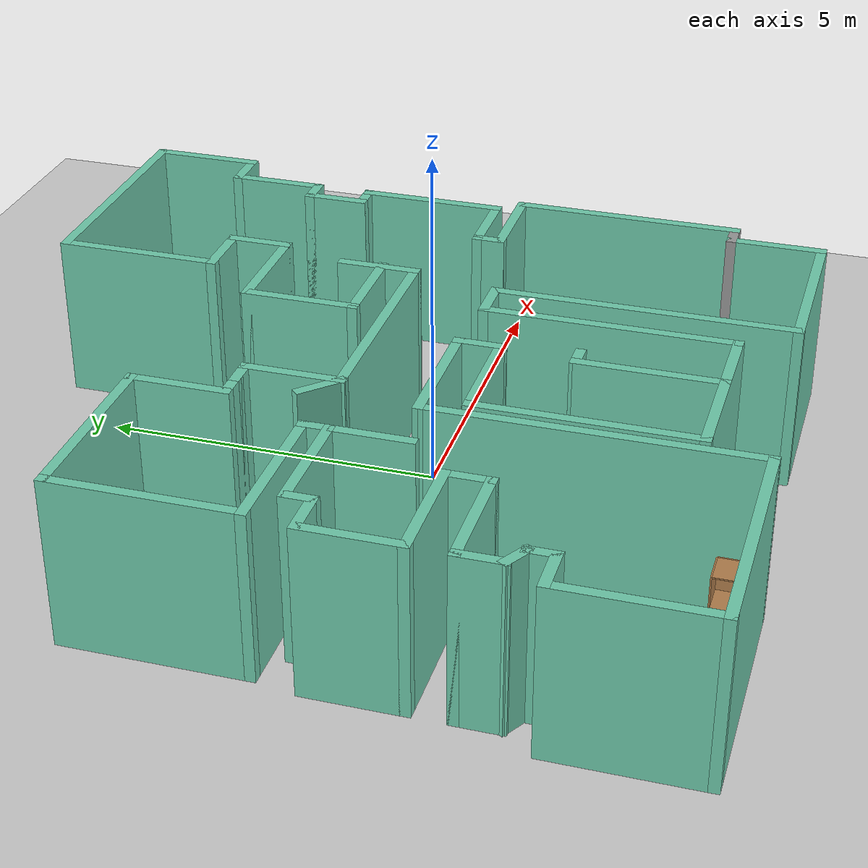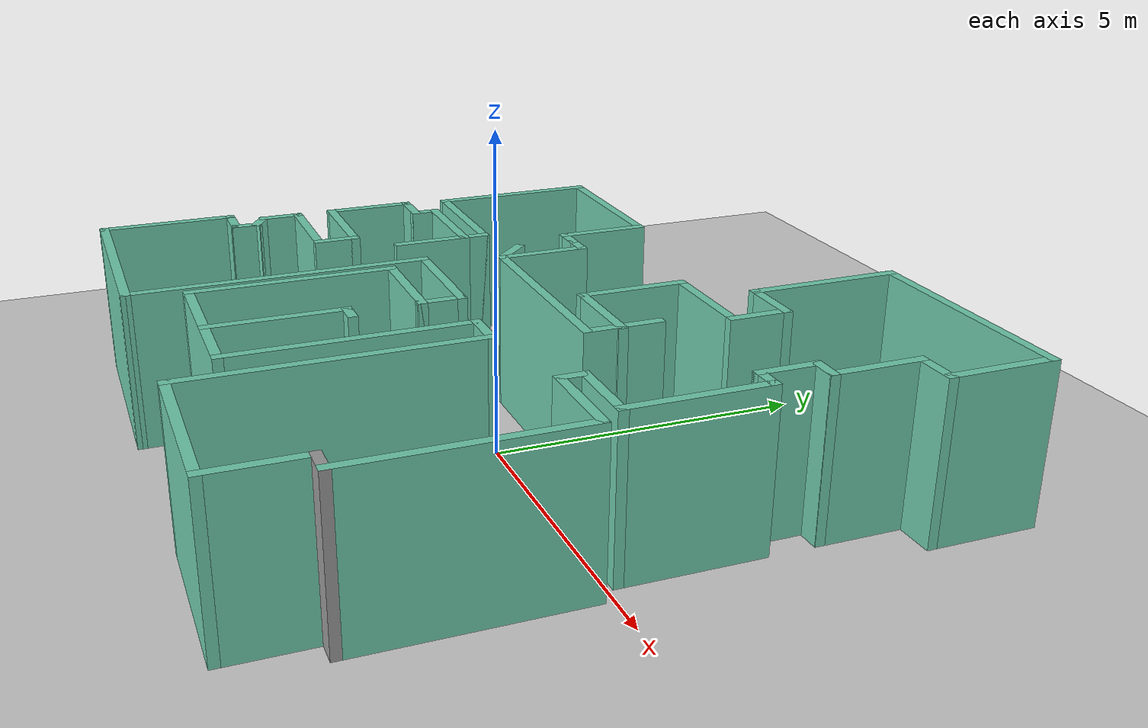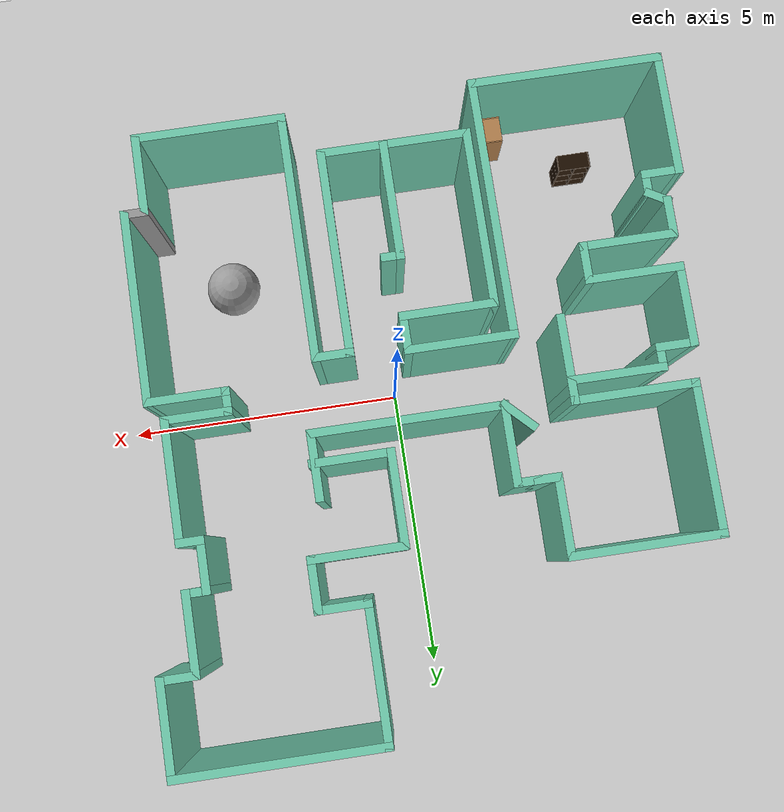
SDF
<sdf version="1.6">
 <world name="default">
  <model name="ground_plane">
   <static>1</static>
   <link name="link">
    <collision name="collision">
     <geometry><plane><normal>0 0 1</normal><size>100 100</size></plane></geometry>
     <surface><friction><ode><mu>100</mu><mu2>50</mu2></ode></friction></surface>
    </collision>
    <visual name="visual">
     <cast_shadows>0</cast_shadows>
     <geometry><plane><normal>0 0 1</normal><size>100 100</size></plane></geometry>
     <material>
      <script><uri>file://media/materials/scripts/gazebo.material</uri><name>Gazebo/Grey</name></script>
     </material>
    </visual>
   </link>
  </model>
  <model name="map_22">
   <pose>-0.422248 0.513262 0 0 -0 0</pose>
   <link name="Wall_0">
    <collision name="Wall_0_Collision">
     <geometry><box><size>3.5 0.15 2.5</size></box></geometry>
     <pose>0 0 1.25 0 -0 0</pose>
    </collision>
    <visual name="Wall_0_Visual">
     <pose>0 0 1.25 0 -0 0</pose>
     <geometry><box><size>3.5 0.15 2.5</size></box></geometry>
     <material>
      <script><uri>file://media/materials/scripts/gazebo.material</uri><name>Gazebo/Grey</name></script>
      <ambient>0.435294 0.796078 0.67451 1</ambient>
     </material>
     <meta><layer>0</layer></meta>
    </visual>
    <pose>-3.3677 -5.54294 0 0 -0 3.14159</pose>
   </link>
   <link name="Wall_1">
    <collision name="Wall_1_Collision">
     <geometry><box><size>2.25 0.15 2.5</size></box></geometry>
     <pose>0 0 1.25 0 -0 0</pose>
    </collision>
    <visual name="Wall_1_Visual">
     <pose>0 0 1.25 0 -0 0</pose>
     <geometry><box><size>2.25 0.15 2.5</size></box></geometry>
     <material>
      <script><uri>file://media/materials/scripts/gazebo.material</uri><name>Gazebo/Grey</name></script>
      <ambient>0.435294 0.796078 0.67451 1</ambient>
     </material>
     <meta><layer>0</layer></meta>
    </visual>
    <pose>-5.0427 -4.49294 0 0 -0 1.5708</pose>
   </link>
   <link name="Wall_10">
    <collision name="Wall_10_Collision">
     <geometry><box><size>0.75 0.15 2.5</size></box></geometry>
     <pose>0 0 1.25 0 -0 0</pose>
    </collision>
    <visual name="Wall_10_Visual">
     <pose>0 0 1.25 0 -0 0</pose>
     <geometry><box><size>0.75 0.15 2.5</size></box></geometry>
     <material>
      <script><uri>file://media/materials/scripts/gazebo.material</uri><name>Gazebo/Grey</name></script>
      <ambient>0.435294 0.796078 0.67451 1</ambient>
     </material>
     <meta><layer>0</layer></meta>
    </visual>
    <pose>-4.44581 -0.367941 0 0 -0 0</pose>
   </link>
   <link name="Wall_11">
    <collision name="Wall_11_Collision">
     <geometry><box><size>0.5 0.15 2.5</size></box></geometry>
     <pose>0 0 1.25 0 -0 0</pose>
    </collision>
    <visual name="Wall_11_Visual">
     <pose>0 0 1.25 0 -0 0</pose>
     <geometry><box><size>0.5 0.15 2.5</size></box></geometry>
     <material>
      <script><uri>file://media/materials/scripts/gazebo.material</uri><name>Gazebo/Grey</name></script>
      <ambient>0.435294 0.796078 0.67451 1</ambient>
     </material>
     <meta><layer>0</layer></meta>
    </visual>
    <pose>-4.14581 -0.192941 0 0 -0 1.5708</pose>
   </link>
   <link name="Wall_12">
    <collision name="Wall_12_Collision">
     <geometry><box><size>1.75 0.15 2.5</size></box></geometry>
     <pose>0 0 1.25 0 -0 0</pose>
    </collision>
    <visual name="Wall_12_Visual">
     <pose>0 0 1.25 0 -0 0</pose>
     <geometry><box><size>1.75 0.15 2.5</size></box></geometry>
     <material>
      <script><uri>file://media/materials/scripts/gazebo.material</uri><name>Gazebo/Grey</name></script>
      <ambient>0.435294 0.796078 0.67451 1</ambient>
     </material>
     <meta><layer>0</layer></meta>
    </visual>
    <pose>-3.34581 -0.017941 0 0 -0 0</pose>
   </link>
   <link name="Wall_13">
    <collision name="Wall_13_Collision">
     <geometry><box><size>1.25 0.15 2.5</size></box></geometry>
     <pose>0 0 1.25 0 -0 0</pose>
    </collision>
    <visual name="Wall_13_Visual">
     <pose>0 0 1.25 0 -0 0</pose>
     <geometry><box><size>1.25 0.15 2.5</size></box></geometry>
     <material>
      <script><uri>file://media/materials/scripts/gazebo.material</uri><name>Gazebo/Grey</name></script>
      <ambient>0.435294 0.796078 0.67451 1</ambient>
     </material>
     <meta><layer>0</layer></meta>
    </visual>
    <pose>-2.54581 -0.567941 0 0 -0 -1.5708</pose>
   </link>
   <link name="Wall_15">
    <collision name="Wall_15_Collision">
     <geometry><box><size>0.5 0.15 2.5</size></box></geometry>
     <pose>0 0 1.25 0 -0 0</pose>
    </collision>
    <visual name="Wall_15_Visual">
     <pose>0 0 1.25 0 -0 0</pose>
     <geometry><box><size>0.5 0.15 2.5</size></box></geometry>
     <material>
      <script><uri>file://media/materials/scripts/gazebo.material</uri><name>Gazebo/Grey</name></script>
      <ambient>0.435294 0.796078 0.67451 1</ambient>
     </material>
     <meta><layer>0</layer></meta>
    </visual>
    <pose>-2.54581 0.157059 0 0 -0 1.5708</pose>
   </link>
   <link name="Wall_16">
    <collision name="Wall_16_Collision">
     <geometry><box><size>2.25 0.15 2.5</size></box></geometry>
     <pose>0 0 1.25 0 -0 0</pose>
    </collision>
    <visual name="Wall_16_Visual">
     <pose>0 0 1.25 0 -0 0</pose>
     <geometry><box><size>2.25 0.15 2.5</size></box></geometry>
     <material>
      <script><uri>file://media/materials/scripts/gazebo.material</uri><name>Gazebo/Grey</name></script>
      <ambient>0.435294 0.796078 0.67451 1</ambient>
     </material>
     <meta><layer>0</layer></meta>
    </visual>
    <pose>-3.59581 0.332059 0 0 -0 3.14159</pose>
   </link>
   <link name="Wall_17">
    <collision name="Wall_17_Collision">
     <geometry><box><size>2.75 0.15 2.5</size></box></geometry>
     <pose>0 0 1.25 0 -0 0</pose>
    </collision>
    <visual name="Wall_17_Visual">
     <pose>0 0 1.25 0 -0 0</pose>
     <geometry><box><size>2.75 0.15 2.5</size></box></geometry>
     <material>
      <script><uri>file://media/materials/scripts/gazebo.material</uri><name>Gazebo/Grey</name></script>
      <ambient>0.435294 0.796078 0.67451 1</ambient>
     </material>
     <meta><layer>0</layer></meta>
    </visual>
    <pose>-4.64581 1.63206 0 0 -0 1.5708</pose>
   </link>
   <link name="Wall_18">
    <collision name="Wall_18_Collision">
     <geometry><box><size>2.75 0.15 2.5</size></box></geometry>
     <pose>0 0 1.25 0 -0 0</pose>
    </collision>
    <visual name="Wall_18_Visual">
     <pose>0 0 1.25 0 -0 0</pose>
     <geometry><box><size>2.75 0.15 2.5</size></box></geometry>
     <material>
      <script><uri>file://media/materials/scripts/gazebo.material</uri><name>Gazebo/Grey</name></script>
      <ambient>0.435294 0.796078 0.67451 1</ambient>
     </material>
     <meta><layer>0</layer></meta>
    </visual>
    <pose>-3.34581 2.93206 0 0 -0 0</pose>
   </link>
   <link name="Wall_19">
    <collision name="Wall_19_Collision">
     <geometry><box><size>1.5 0.15 2.5</size></box></geometry>
     <pose>0 0 1.25 0 -0 0</pose>
    </collision>
    <visual name="Wall_19_Visual">
     <pose>0 0 1.25 0 -0 0</pose>
     <geometry><box><size>1.5 0.15 2.5</size></box></geometry>
     <material>
      <script><uri>file://media/materials/scripts/gazebo.material</uri><name>Gazebo/Grey</name></script>
      <ambient>0.435294 0.796078 0.67451 1</ambient>
     </material>
     <meta><layer>0</layer></meta>
    </visual>
    <pose>-2.04581 2.25706 0 0 -0 -1.5708</pose>
   </link>
   <link name="Wall_2">
    <collision name="Wall_2_Collision">
     <geometry><box><size>0.75 0.15 2.5</size></box></geometry>
     <pose>0 0 1.25 0 -0 0</pose>
    </collision>
    <visual name="Wall_2_Visual">
     <pose>0 0 1.25 0 -0 0</pose>
     <geometry><box><size>0.75 0.15 2.5</size></box></geometry>
     <material>
      <script><uri>file://media/materials/scripts/gazebo.material</uri><name>Gazebo/Grey</name></script>
      <ambient>0.435294 0.796078 0.67451 1</ambient>
     </material>
     <meta><layer>0</layer></meta>
    </visual>
    <pose>-4.7427 -3.44294 0 0 -0 0</pose>
   </link>
   <link name="Wall_20">
    <collision name="Wall_20_Collision">
     <geometry><box><size>0.5 0.15 2.5</size></box></geometry>
     <pose>0 0 1.25 0 -0 0</pose>
    </collision>
    <visual name="Wall_20_Visual">
     <pose>0 0 1.25 0 -0 0</pose>
     <geometry><box><size>0.5 0.15 2.5</size></box></geometry>
     <material>
      <script><uri>file://media/materials/scripts/gazebo.material</uri><name>Gazebo/Grey</name></script>
      <ambient>0.435294 0.796078 0.67451 1</ambient>
     </material>
     <meta><layer>0</layer></meta>
    </visual>
    <pose>-1.87081 1.58206 0 0 -0 0</pose>
   </link>
   <link name="Wall_21">
    <collision name="Wall_21_Collision">
     <geometry><box><size>0.5 0.15 2.5</size></box></geometry>
     <pose>0 0 1.25 0 -0 0</pose>
    </collision>
    <visual name="Wall_21_Visual">
     <pose>0 0 1.25 0 -0 0</pose>
     <geometry><box><size>0.5 0.15 2.5</size></box></geometry>
     <material>
      <script><uri>file://media/materials/scripts/gazebo.material</uri><name>Gazebo/Grey</name></script>
      <ambient>0.435294 0.796078 0.67451 1</ambient>
     </material>
     <meta><layer>0</layer></meta>
    </visual>
    <pose>-1.52081 1.58206 0 0 -0 0</pose>
   </link>
   <link name="Wall_22">
    <collision name="Wall_22_Collision">
     <geometry><box><size>1.5 0.15 2.5</size></box></geometry>
     <pose>0 0 1.25 0 -0 0</pose>
    </collision>
    <visual name="Wall_22_Visual">
     <pose>0 0 1.25 0 -0 0</pose>
     <geometry><box><size>1.5 0.15 2.5</size></box></geometry>
     <material>
      <script><uri>file://media/materials/scripts/gazebo.material</uri><name>Gazebo/Grey</name></script>
      <ambient>0.435294 0.796078 0.67451 1</ambient>
     </material>
     <meta><layer>0</layer></meta>
    </visual>
    <pose>-1.34581 0.907059 0 0 -0 -1.5708</pose>
   </link>
   <link name="Wall_23">
    <collision name="Wall_23_Collision">
     <geometry><box><size>0.75 0.15 2.5</size></box></geometry>
     <pose>0 0 1.25 0 -0 0</pose>
    </collision>
    <visual name="Wall_23_Visual">
     <pose>0 0 1.25 0 -0 0</pose>
     <geometry><box><size>0.75 0.15 2.5</size></box></geometry>
     <material>
      <script><uri>file://media/materials/scripts/gazebo.material</uri><name>Gazebo/Grey</name></script>
      <ambient>0.435294 0.796078 0.67451 1</ambient>
     </material>
     <meta><layer>0</layer></meta>
    </visual>
    <pose>-1.55794 0.444191 0 0 -0 2.35619</pose>
   </link>
   <link name="Wall_25">
    <collision name="Wall_25_Collision">
     <geometry><box><size>3.5 0.15 2.5</size></box></geometry>
     <pose>0 0 1.25 0 -0 0</pose>
    </collision>
    <visual name="Wall_25_Visual">
     <pose>0 0 1.25 0 -0 0</pose>
     <geometry><box><size>3.5 0.15 2.5</size></box></geometry>
     <material>
      <script><uri>file://media/materials/scripts/gazebo.material</uri><name>Gazebo/Grey</name></script>
      <ambient>0.435294 0.796078 0.67451 1</ambient>
     </material>
     <meta><layer>0</layer></meta>
    </visual>
    <pose>0.329189 0.232059 0 0 -0 0</pose>
   </link>
   <link name="Wall_26">
    <collision name="Wall_26_Collision">
     <geometry><box><size>1.25 0.15 2.5</size></box></geometry>
     <pose>0 0 1.25 0 -0 0</pose>
    </collision>
    <visual name="Wall_26_Visual">
     <pose>0 0 1.25 0 -0 0</pose>
     <geometry><box><size>1.25 0.15 2.5</size></box></geometry>
     <material>
      <script><uri>file://media/materials/scripts/gazebo.material</uri><name>Gazebo/Grey</name></script>
      <ambient>0.435294 0.796078 0.67451 1</ambient>
     </material>
     <meta><layer>0</layer></meta>
    </visual>
    <pose>2.00419 0.782059 0 0 -0 1.5708</pose>
   </link>
   <link name="Wall_28">
    <collision name="Wall_28_Collision">
     <geometry><box><size>1.5 0.15 2.5</size></box></geometry>
     <pose>0 0 1.25 0 -0 0</pose>
    </collision>
    <visual name="Wall_28_Visual">
     <pose>0 0 1.25 0 -0 0</pose>
     <geometry><box><size>1.5 0.15 2.5</size></box></geometry>
     <material>
      <script><uri>file://media/materials/scripts/gazebo.material</uri><name>Gazebo/Grey</name></script>
      <ambient>0.435294 0.796078 0.67451 1</ambient>
     </material>
     <meta><layer>0</layer></meta>
    </visual>
    <pose>1.3677 0.74318 0 0 -0 3.14159</pose>
   </link>
   <link name="Wall_29">
    <collision name="Wall_29_Collision">
     <geometry><box><size>1.75 0.15 2.5</size></box></geometry>
     <pose>0 0 1.25 0 -0 0</pose>
    </collision>
    <visual name="Wall_29_Visual">
     <pose>0 0 1.25 0 -0 0</pose>
     <geometry><box><size>1.75 0.15 2.5</size></box></geometry>
     <material>
      <script><uri>file://media/materials/scripts/gazebo.material</uri><name>Gazebo/Grey</name></script>
      <ambient>0.435294 0.796078 0.67451 1</ambient>
     </material>
     <meta><layer>0</layer></meta>
    </visual>
    <pose>0.692703 1.54318 0 0 -0 1.5708</pose>
   </link>
   <link name="Wall_3">
    <collision name="Wall_3_Collision">
     <geometry><box><size>0.5 0.15 2.5</size></box></geometry>
     <pose>0 0 1.25 0 -0 0</pose>
    </collision>
    <visual name="Wall_3_Visual">
     <pose>0 0 1.25 0 -0 0</pose>
     <geometry><box><size>0.5 0.15 2.5</size></box></geometry>
     <material>
      <script><uri>file://media/materials/scripts/gazebo.material</uri><name>Gazebo/Grey</name></script>
      <ambient>0.435294 0.796078 0.67451 1</ambient>
     </material>
     <meta><layer>0</layer></meta>
    </visual>
    <pose>-4.4427 -3.26794 0 0 -0 1.5708</pose>
   </link>
   <link name="Wall_30">
    <collision name="Wall_30_Collision">
     <geometry><box><size>1.75 0.15 2.5</size></box></geometry>
     <pose>0 0 1.25 0 -0 0</pose>
    </collision>
    <visual name="Wall_30_Visual">
     <pose>0 0 1.25 0 -0 0</pose>
     <geometry><box><size>1.75 0.15 2.5</size></box></geometry>
     <material>
      <script><uri>file://media/materials/scripts/gazebo.material</uri><name>Gazebo/Grey</name></script>
      <ambient>0.435294 0.796078 0.67451 1</ambient>
     </material>
     <meta><layer>0</layer></meta>
    </visual>
    <pose>1.4927 2.34318 0 0 -0 0</pose>
   </link>
   <link name="Wall_31">
    <collision name="Wall_31_Collision">
     <geometry><box><size>1 0.15 2.5</size></box></geometry>
     <pose>0 0 1.25 0 -0 0</pose>
    </collision>
    <visual name="Wall_31_Visual">
     <pose>0 0 1.25 0 -0 0</pose>
     <geometry><box><size>1 0.15 2.5</size></box></geometry>
     <material>
      <script><uri>file://media/materials/scripts/gazebo.material</uri><name>Gazebo/Grey</name></script>
      <ambient>0.435294 0.796078 0.67451 1</ambient>
     </material>
     <meta><layer>0</layer></meta>
    </visual>
    <pose>2.2927 2.76818 0 0 -0 1.5708</pose>
   </link>
   <link name="Wall_32">
    <collision name="Wall_32_Collision">
     <geometry><box><size>1 0.15 2.5</size></box></geometry>
     <pose>0 0 1.25 0 -0 0</pose>
    </collision>
    <visual name="Wall_32_Visual">
     <pose>0 0 1.25 0 -0 0</pose>
     <geometry><box><size>1 0.15 2.5</size></box></geometry>
     <material>
      <script><uri>file://media/materials/scripts/gazebo.material</uri><name>Gazebo/Grey</name></script>
      <ambient>0.435294 0.796078 0.67451 1</ambient>
     </material>
     <meta><layer>0</layer></meta>
    </visual>
    <pose>1.8677 3.19318 0 0 -0 3.14159</pose>
   </link>
   <link name="Wall_34">
    <collision name="Wall_34_Collision">
     <geometry><box><size>2.5 0.15 2.5</size></box></geometry>
     <pose>0 0 1.25 0 -0 0</pose>
    </collision>
    <visual name="Wall_34_Visual">
     <pose>0 0 1.25 0 -0 0</pose>
     <geometry><box><size>2.5 0.15 2.5</size></box></geometry>
     <material>
      <script><uri>file://media/materials/scripts/gazebo.material</uri><name>Gazebo/Grey</name></script>
      <ambient>0.435294 0.796078 0.67451 1</ambient>
     </material>
     <meta><layer>0</layer></meta>
    </visual>
    <pose>1.4427 4.36818 0 0 -0 1.5708</pose>
   </link>
   <link name="Wall_35">
    <collision name="Wall_35_Collision">
     <geometry><box><size>3.75 0.15 2.5</size></box></geometry>
     <pose>0 0 1.25 0 -0 0</pose>
    </collision>
    <visual name="Wall_35_Visual">
     <pose>0 0 1.25 0 -0 0</pose>
     <geometry><box><size>3.75 0.15 2.5</size></box></geometry>
     <material>
      <script><uri>file://media/materials/scripts/gazebo.material</uri><name>Gazebo/Grey</name></script>
      <ambient>0.435294 0.796078 0.67451 1</ambient>
     </material>
     <meta><layer>0</layer></meta>
    </visual>
    <pose>3.2427 5.54318 0 0 -0 0</pose>
   </link>
   <link name="Wall_36">
    <collision name="Wall_36_Collision">
     <geometry><box><size>1.75 0.15 2.5</size></box></geometry>
     <pose>0 0 1.25 0 -0 0</pose>
    </collision>
    <visual name="Wall_36_Visual">
     <pose>0 0 1.25 0 -0 0</pose>
     <geometry><box><size>1.75 0.15 2.5</size></box></geometry>
     <material>
      <script><uri>file://media/materials/scripts/gazebo.material</uri><name>Gazebo/Grey</name></script>
      <ambient>0.435294 0.796078 0.67451 1</ambient>
     </material>
     <meta><layer>0</layer></meta>
    </visual>
    <pose>5.0427 4.74318 0 0 -0 -1.5708</pose>
   </link>
   <link name="Wall_37">
    <collision name="Wall_37_Collision">
     <geometry><box><size>0.75 0.15 2.5</size></box></geometry>
     <pose>0 0 1.25 0 -0 0</pose>
    </collision>
    <visual name="Wall_37_Visual">
     <pose>0 0 1.25 0 -0 0</pose>
     <geometry><box><size>0.75 0.15 2.5</size></box></geometry>
     <material>
      <script><uri>file://media/materials/scripts/gazebo.material</uri><name>Gazebo/Grey</name></script>
      <ambient>0.435294 0.796078 0.67451 1</ambient>
     </material>
     <meta><layer>0</layer></meta>
    </visual>
    <pose>4.7427 3.94318 0 0 -0 3.14159</pose>
   </link>
   <link name="Wall_38">
    <collision name="Wall_38_Collision">
     <geometry><box><size>1.5 0.15 2.5</size></box></geometry>
     <pose>0 0 1.25 0 -0 0</pose>
    </collision>
    <visual name="Wall_38_Visual">
     <pose>0 0 1.25 0 -0 0</pose>
     <geometry><box><size>1.5 0.15 2.5</size></box></geometry>
     <material>
      <script><uri>file://media/materials/scripts/gazebo.material</uri><name>Gazebo/Grey</name></script>
      <ambient>0.435294 0.796078 0.67451 1</ambient>
     </material>
     <meta><layer>0</layer></meta>
    </visual>
    <pose>4.4427 3.26818 0 0 -0 -1.5708</pose>
   </link>
   <link name="Wall_39">
    <collision name="Wall_39_Collision">
     <geometry><box><size>0.5 0.15 2.5</size></box></geometry>
     <pose>0 0 1.25 0 -0 0</pose>
    </collision>
    <visual name="Wall_39_Visual">
     <pose>0 0 1.25 0 -0 0</pose>
     <geometry><box><size>0.5 0.15 2.5</size></box></geometry>
     <material>
      <script><uri>file://media/materials/scripts/gazebo.material</uri><name>Gazebo/Grey</name></script>
      <ambient>0.435294 0.796078 0.67451 1</ambient>
     </material>
     <meta><layer>0</layer></meta>
    </visual>
    <pose>4.2677 2.59318 0 0 -0 3.14159</pose>
   </link>
   <link name="Wall_4">
    <collision name="Wall_4_Collision">
     <geometry><box><size>0.5 0.15 2.5</size></box></geometry>
     <pose>0 0 1.25 0 -0 0</pose>
    </collision>
    <visual name="Wall_4_Visual">
     <pose>0 0 1.25 0 -0 0</pose>
     <geometry><box><size>0.5 0.15 2.5</size></box></geometry>
     <material>
      <script><uri>file://media/materials/scripts/gazebo.material</uri><name>Gazebo/Grey</name></script>
      <ambient>0.435294 0.796078 0.67451 1</ambient>
     </material>
     <meta><layer>0</layer></meta>
    </visual>
    <pose>-4.59426 -3.00544 0 0 -0 2.61799</pose>
   </link>
   <link name="Wall_40">
    <collision name="Wall_40_Collision">
     <geometry><box><size>1 0.15 2.5</size></box></geometry>
     <pose>0 0 1.25 0 -0 0</pose>
    </collision>
    <visual name="Wall_40_Visual">
     <pose>0 0 1.25 0 -0 0</pose>
     <geometry><box><size>1 0.15 2.5</size></box></geometry>
     <material>
      <script><uri>file://media/materials/scripts/gazebo.material</uri><name>Gazebo/Grey</name></script>
      <ambient>0.435294 0.796078 0.67451 1</ambient>
     </material>
     <meta><layer>0</layer></meta>
    </visual>
    <pose>4.0927 2.16818 0 0 -0 -1.5708</pose>
   </link>
   <link name="Wall_42">
    <collision name="Wall_42_Collision">
     <geometry><box><size>0.5 0.15 2.5</size></box></geometry>
     <pose>0 0 1.25 0 -0 0</pose>
    </collision>
    <visual name="Wall_42_Visual">
     <pose>0 0 1.25 0 -0 0</pose>
     <geometry><box><size>0.5 0.15 2.5</size></box></geometry>
     <material>
      <script><uri>file://media/materials/scripts/gazebo.material</uri><name>Gazebo/Grey</name></script>
      <ambient>0.435294 0.796078 0.67451 1</ambient>
     </material>
     <meta><layer>0</layer></meta>
    </visual>
    <pose>4.2677 1.74318 0 0 -0 0</pose>
   </link>
   <link name="Wall_43">
    <collision name="Wall_43_Collision">
     <geometry><box><size>2.25 0.15 2.5</size></box></geometry>
     <pose>0 0 1.25 0 -0 0</pose>
    </collision>
    <visual name="Wall_43_Visual">
     <pose>0 0 1.25 0 -0 0</pose>
     <geometry><box><size>2.25 0.15 2.5</size></box></geometry>
     <material>
      <script><uri>file://media/materials/scripts/gazebo.material</uri><name>Gazebo/Grey</name></script>
      <ambient>0.435294 0.796078 0.67451 1</ambient>
     </material>
     <meta><layer>0</layer></meta>
    </visual>
    <pose>4.4427 0.69318 0 0 -0 -1.5708</pose>
   </link>
   <link name="Wall_44">
    <collision name="Wall_44_Collision">
     <geometry><box><size>1.25 0.15 2.5</size></box></geometry>
     <pose>0 0 1.25 0 -0 0</pose>
    </collision>
    <visual name="Wall_44_Visual">
     <pose>0 0 1.25 0 -0 0</pose>
     <geometry><box><size>1.25 0.15 2.5</size></box></geometry>
     <material>
      <script><uri>file://media/materials/scripts/gazebo.material</uri><name>Gazebo/Grey</name></script>
      <ambient>0.435294 0.796078 0.67451 1</ambient>
     </material>
     <meta><layer>0</layer></meta>
    </visual>
    <pose>3.8927 -0.35682 0 0 -0 3.14159</pose>
   </link>
   <link name="Wall_45">
    <collision name="Wall_45_Collision">
     <geometry><box><size>0.5 0.15 2.5</size></box></geometry>
     <pose>0 0 1.25 0 -0 0</pose>
    </collision>
    <visual name="Wall_45_Visual">
     <pose>0 0 1.25 0 -0 0</pose>
     <geometry><box><size>0.5 0.15 2.5</size></box></geometry>
     <material>
      <script><uri>file://media/materials/scripts/gazebo.material</uri><name>Gazebo/Grey</name></script>
      <ambient>0.435294 0.796078 0.67451 1</ambient>
     </material>
     <meta><layer>0</layer></meta>
    </visual>
    <pose>3.3427 -0.53182 0 0 -0 -1.5708</pose>
   </link>
   <link name="Wall_46">
    <collision name="Wall_46_Collision">
     <geometry><box><size>1.5 0.15 2.5</size></box></geometry>
     <pose>0 0 1.25 0 -0 0</pose>
    </collision>
    <visual name="Wall_46_Visual">
     <pose>0 0 1.25 0 -0 0</pose>
     <geometry><box><size>1.5 0.15 2.5</size></box></geometry>
     <material>
      <script><uri>file://media/materials/scripts/gazebo.material</uri><name>Gazebo/Grey</name></script>
      <ambient>0.435294 0.796078 0.67451 1</ambient>
     </material>
     <meta><layer>0</layer></meta>
    </visual>
    <pose>4.0177 -0.70682 0 0 -0 0</pose>
   </link>
   <link name="Wall_48">
    <collision name="Wall_48_Collision">
     <geometry><box><size>3.5 0.15 2.5</size></box></geometry>
     <pose>0 0 1.25 0 -0 0</pose>
    </collision>
    <visual name="Wall_48_Visual">
     <pose>0 0 1.25 0 -0 0</pose>
     <geometry><box><size>3.5 0.15 2.5</size></box></geometry>
     <material>
      <script><uri>file://media/materials/scripts/gazebo.material</uri><name>Gazebo/Grey</name></script>
      <ambient>0.435294 0.796078 0.67451 1</ambient>
     </material>
     <meta><layer>0</layer></meta>
    </visual>
    <pose>4.6927 -2.38182 0 0 -0 -1.5708</pose>
   </link>
   <link name="Wall_49">
    <collision name="Wall_49_Collision">
     <geometry><box><size>0.5 0.15 2.5</size></box></geometry>
     <pose>0 0 1.25 0 -0 0</pose>
    </collision>
    <visual name="Wall_49_Visual">
     <pose>0 0 1.25 0 -0 0</pose>
     <geometry><box><size>0.5 0.15 2.5</size></box></geometry>
     <material>
      <script><uri>file://media/materials/scripts/gazebo.material</uri><name>Gazebo/Grey</name></script>
      <ambient>1 1 1 1</ambient>
     </material>
     <meta><layer>0</layer></meta>
    </visual>
    <pose>4.5177 -4.05682 0 0 -0 3.14159</pose>
   </link>
   <link name="Wall_5">
    <collision name="Wall_5_Collision">
     <geometry><box><size>0.75 0.15 2.5</size></box></geometry>
     <pose>0 0 1.25 0 -0 0</pose>
    </collision>
    <visual name="Wall_5_Visual">
     <pose>0 0 1.25 0 -0 0</pose>
     <geometry><box><size>0.75 0.15 2.5</size></box></geometry>
     <material>
      <script><uri>file://media/materials/scripts/gazebo.material</uri><name>Gazebo/Grey</name></script>
      <ambient>0.435294 0.796078 0.67451 1</ambient>
     </material>
     <meta><layer>0</layer></meta>
    </visual>
    <pose>-4.74581 -2.61794 0 0 -0 1.5708</pose>
   </link>
   <link name="Wall_50">
    <collision name="Wall_50_Collision">
     <geometry><box><size>1.5 0.15 2.5</size></box></geometry>
     <pose>0 0 1.25 0 -0 0</pose>
    </collision>
    <visual name="Wall_50_Visual">
     <pose>0 0 1.25 0 -0 0</pose>
     <geometry><box><size>1.5 0.15 2.5</size></box></geometry>
     <material>
      <script><uri>file://media/materials/scripts/gazebo.material</uri><name>Gazebo/Grey</name></script>
      <ambient>0.435294 0.796078 0.67451 1</ambient>
     </material>
     <meta><layer>0</layer></meta>
    </visual>
    <pose>4.3427 -4.73182 0 0 -0 -1.5708</pose>
   </link>
   <link name="Wall_51">
    <collision name="Wall_51_Collision">
     <geometry><box><size>2.75 0.15 2.5</size></box></geometry>
     <pose>0 0 1.25 0 -0 0</pose>
    </collision>
    <visual name="Wall_51_Visual">
     <pose>0 0 1.25 0 -0 0</pose>
     <geometry><box><size>2.75 0.15 2.5</size></box></geometry>
     <material>
      <script><uri>file://media/materials/scripts/gazebo.material</uri><name>Gazebo/Grey</name></script>
      <ambient>0.435294 0.796078 0.67451 1</ambient>
     </material>
     <meta><layer>0</layer></meta>
    </visual>
    <pose>3.0427 -5.40682 0 0 -0 3.14159</pose>
   </link>
   <link name="Wall_52">
    <collision name="Wall_52_Collision">
     <geometry><box><size>4.5 0.15 2.5</size></box></geometry>
     <pose>0 0 1.25 0 -0 0</pose>
    </collision>
    <visual name="Wall_52_Visual">
     <pose>0 0 1.25 0 -0 0</pose>
     <geometry><box><size>4.5 0.15 2.5</size></box></geometry>
     <material>
      <script><uri>file://media/materials/scripts/gazebo.material</uri><name>Gazebo/Grey</name></script>
      <ambient>0.435294 0.796078 0.67451 1</ambient>
     </material>
     <meta><layer>0</layer></meta>
    </visual>
    <pose>1.7427 -3.23182 0 0 -0 1.5708</pose>
   </link>
   <link name="Wall_53">
    <collision name="Wall_53_Collision">
     <geometry><box><size>0.75 0.15 2.5</size></box></geometry>
     <pose>0 0 1.25 0 -0 0</pose>
    </collision>
    <visual name="Wall_53_Visual">
     <pose>0 0 1.25 0 -0 0</pose>
     <geometry><box><size>0.75 0.15 2.5</size></box></geometry>
     <material>
      <script><uri>file://media/materials/scripts/gazebo.material</uri><name>Gazebo/Grey</name></script>
      <ambient>0.435294 0.796078 0.67451 1</ambient>
     </material>
     <meta><layer>0</layer></meta>
    </visual>
    <pose>1.4427 -1.05682 0 0 -0 3.14159</pose>
   </link>
   <link name="Wall_54">
    <collision name="Wall_54_Collision">
     <geometry><box><size>3.75 0.15 2.5</size></box></geometry>
     <pose>0 0 1.25 0 -0 0</pose>
    </collision>
    <visual name="Wall_54_Visual">
     <pose>0 0 1.25 0 -0 0</pose>
     <geometry><box><size>3.75 0.15 2.5</size></box></geometry>
     <material>
      <script><uri>file://media/materials/scripts/gazebo.material</uri><name>Gazebo/Grey</name></script>
      <ambient>0.435294 0.796078 0.67451 1</ambient>
     </material>
     <meta><layer>0</layer></meta>
    </visual>
    <pose>1.1427 -2.85682 0 0 -0 -1.5708</pose>
   </link>
   <link name="Wall_55">
    <collision name="Wall_55_Collision">
     <geometry><box><size>2.75 0.15 2.5</size></box></geometry>
     <pose>0 0 1.25 0 -0 0</pose>
    </collision>
    <visual name="Wall_55_Visual">
     <pose>0 0 1.25 0 -0 0</pose>
     <geometry><box><size>2.75 0.15 2.5</size></box></geometry>
     <material>
      <script><uri>file://media/materials/scripts/gazebo.material</uri><name>Gazebo/Grey</name></script>
      <ambient>0.435294 0.796078 0.67451 1</ambient>
     </material>
     <meta><layer>0</layer></meta>
    </visual>
    <pose>-0.157297 -4.65682 0 0 -0 3.14159</pose>
   </link>
   <link name="Wall_56">
    <collision name="Wall_56_Collision">
     <geometry><box><size>3.25 0.15 2.5</size></box></geometry>
     <pose>0 0 1.25 0 -0 0</pose>
    </collision>
    <visual name="Wall_56_Visual">
     <pose>0 0 1.25 0 -0 0</pose>
     <geometry><box><size>3.25 0.15 2.5</size></box></geometry>
     <material>
      <script><uri>file://media/materials/scripts/gazebo.material</uri><name>Gazebo/Grey</name></script>
      <ambient>0.435294 0.796078 0.67451 1</ambient>
     </material>
     <meta><layer>0</layer></meta>
    </visual>
    <pose>-1.4573 -3.10682 0 0 -0 1.5708</pose>
   </link>
   <link name="Wall_57">
    <collision name="Wall_57_Collision">
     <geometry><box><size>1.75 0.15 2.5</size></box></geometry>
     <pose>0 0 1.25 0 -0 0</pose>
    </collision>
    <visual name="Wall_57_Visual">
     <pose>0 0 1.25 0 -0 0</pose>
     <geometry><box><size>1.75 0.15 2.5</size></box></geometry>
     <material>
      <script><uri>file://media/materials/scripts/gazebo.material</uri><name>Gazebo/Grey</name></script>
      <ambient>0.435294 0.796078 0.67451 1</ambient>
     </material>
     <meta><layer>0</layer></meta>
    </visual>
    <pose>-0.657297 -1.55682 0 0 -0 0</pose>
   </link>
   <link name="Wall_58">
    <collision name="Wall_58_Collision">
     <geometry><box><size>0.75 0.15 2.5</size></box></geometry>
     <pose>0 0 1.25 0 -0 0</pose>
    </collision>
    <visual name="Wall_58_Visual">
     <pose>0 0 1.25 0 -0 0</pose>
     <geometry><box><size>0.75 0.15 2.5</size></box></geometry>
     <material>
      <script><uri>file://media/materials/scripts/gazebo.material</uri><name>Gazebo/Grey</name></script>
      <ambient>0.435294 0.796078 0.67451 1</ambient>
     </material>
     <meta><layer>0</layer></meta>
    </visual>
    <pose>0.142703 -1.25682 0 0 -0 1.5708</pose>
   </link>
   <link name="Wall_59">
    <collision name="Wall_59_Collision">
     <geometry><box><size>2 0.15 2.5</size></box></geometry>
     <pose>0 0 1.25 0 -0 0</pose>
    </collision>
    <visual name="Wall_59_Visual">
     <pose>0 0 1.25 0 -0 0</pose>
     <geometry><box><size>2 0.15 2.5</size></box></geometry>
     <material>
      <script><uri>file://media/materials/scripts/gazebo.material</uri><name>Gazebo/Grey</name></script>
      <ambient>0.435294 0.796078 0.67451 1</ambient>
     </material>
     <meta><layer>0</layer></meta>
    </visual>
    <pose>-0.782297 -0.95682 0 0 -0 3.14159</pose>
   </link>
   <link name="Wall_6">
    <collision name="Wall_6_Collision">
     <geometry><box><size>1.75 0.15 2.5</size></box></geometry>
     <pose>0 0 1.25 0 -0 0</pose>
    </collision>
    <visual name="Wall_6_Visual">
     <pose>0 0 1.25 0 -0 0</pose>
     <geometry><box><size>1.75 0.15 2.5</size></box></geometry>
     <material>
      <script><uri>file://media/materials/scripts/gazebo.material</uri><name>Gazebo/Grey</name></script>
      <ambient>0.435294 0.796078 0.67451 1</ambient>
     </material>
     <meta><layer>0</layer></meta>
    </visual>
    <pose>-3.94581 -2.31794 0 0 -0 0</pose>
   </link>
   <link name="Wall_60">
    <collision name="Wall_60_Collision">
     <geometry><box><size>4.73614 0.15 2.5</size></box></geometry>
     <pose>0 0 1.25 0 -0 0</pose>
    </collision>
    <visual name="Wall_60_Visual">
     <pose>0 0 1.25 0 -0 0</pose>
     <geometry><box><size>4.73614 0.15 2.5</size></box></geometry>
     <material>
      <script><uri>file://media/materials/scripts/gazebo.material</uri><name>Gazebo/Grey</name></script>
      <ambient>0.435294 0.796078 0.67451 1</ambient>
     </material>
     <meta><layer>0</layer></meta>
    </visual>
    <pose>-1.7 -3.24988 0 0 -0 -1.56761</pose>
   </link>
   <link name="Wall_62">
    <collision name="Wall_62_Collision">
     <geometry><box><size>2.17401 0.15 2.5</size></box></geometry>
     <pose>0 0 1.25 0 -0 0</pose>
    </collision>
    <visual name="Wall_62_Visual">
     <pose>0 0 1.25 0 -0 0</pose>
     <geometry><box><size>2.17401 0.15 2.5</size></box></geometry>
     <material>
      <script><uri>file://media/materials/scripts/gazebo.material</uri><name>Gazebo/Grey</name></script>
      <ambient>0.435294 0.796078 0.67451 1</ambient>
     </material>
     <meta><layer>0</layer></meta>
    </visual>
    <pose>0.028032 -3.64444 0 0 -0 1.57073</pose>
   </link>
   <link name="Wall_63">
    <collision name="Wall_63_Collision">
     <geometry><box><size>0.422 0.15 2.5</size></box></geometry>
     <pose>0 0 1.25 0 -0 0</pose>
    </collision>
    <visual name="Wall_63_Visual">
     <pose>0 0 1.25 0 -0 0</pose>
     <geometry><box><size>0.422 0.15 2.5</size></box></geometry>
     <material>
      <script><uri>file://media/materials/scripts/gazebo.material</uri><name>Gazebo/Grey</name></script>
      <ambient>0.435294 0.796078 0.67451 1</ambient>
     </material>
     <meta><layer>0</layer></meta>
    </visual>
    <pose>0.1641 -2.6327 0 0 -0 0</pose>
   </link>
   <link name="Wall_7">
    <collision name="Wall_7_Collision">
     <geometry><box><size>0.75 0.15 2.5</size></box></geometry>
     <pose>0 0 1.25 0 -0 0</pose>
    </collision>
    <visual name="Wall_7_Visual">
     <pose>0 0 1.25 0 -0 0</pose>
     <geometry><box><size>0.75 0.15 2.5</size></box></geometry>
     <material>
      <script><uri>file://media/materials/scripts/gazebo.material</uri><name>Gazebo/Grey</name></script>
      <ambient>0.435294 0.796078 0.67451 1</ambient>
     </material>
     <meta><layer>0</layer></meta>
    </visual>
    <pose>-3.14581 -2.01794 0 0 -0 1.5708</pose>
   </link>
   <link name="Wall_8">
    <collision name="Wall_8_Collision">
     <geometry><box><size>1.75 0.15 2.5</size></box></geometry>
     <pose>0 0 1.25 0 -0 0</pose>
    </collision>
    <visual name="Wall_8_Visual">
     <pose>0 0 1.25 0 -0 0</pose>
     <geometry><box><size>1.75 0.15 2.5</size></box></geometry>
     <material>
      <script><uri>file://media/materials/scripts/gazebo.material</uri><name>Gazebo/Grey</name></script>
      <ambient>0.435294 0.796078 0.67451 1</ambient>
     </material>
     <meta><layer>0</layer></meta>
    </visual>
    <pose>-3.94581 -1.71794 0 0 -0 3.14159</pose>
   </link>
   <link name="Wall_9">
    <collision name="Wall_9_Collision">
     <geometry><box><size>1.5 0.15 2.5</size></box></geometry>
     <pose>0 0 1.25 0 -0 0</pose>
    </collision>
    <visual name="Wall_9_Visual">
     <pose>0 0 1.25 0 -0 0</pose>
     <geometry><box><size>1.5 0.15 2.5</size></box></geometry>
     <material>
      <script><uri>file://media/materials/scripts/gazebo.material</uri><name>Gazebo/Grey</name></script>
      <ambient>0.435294 0.796078 0.67451 1</ambient>
     </material>
     <meta><layer>0</layer></meta>
    </visual>
    <pose>-4.74581 -1.04294 0 0 -0 1.5708</pose>
   </link>
   <static>1</static>
  </model>
  <model name="unit_sphere">
   <pose>2.74975 -2.46577 0.5 0 -0 0</pose>
   <link name="link">
    <inertial>
     <mass>1</mass>
     <inertia><ixx>0.1</ixx><ixy>0</ixy><ixz>0</ixz><iyy>0.1</iyy><iyz>0</iyz><izz>0.1</izz></inertia>
    </inertial>
    <collision name="collision"><geometry><sphere><radius>0.5</radius></sphere></geometry></collision>
    <visual name="visual">
     <geometry><sphere><radius>0.5</radius></sphere></geometry>
     <material>
      <script><name>Gazebo/Grey</name><uri>file://media/materials/scripts/gazebo.material</uri></script>
     </material>
    </visual>
   </link>
  </model>
  <model name="6_Cube_StorageE">
   <link name="Wall_0">
    <pose>0 0 0.01 0 -0 0</pose>
    <inertial>
     <mass>1.6201</mass>
     <inertia><ixx>0.0119</ixx><iyy>0.0631</iyy><izz>0.0513</izz><ixy>0</ixy><ixz>0</ixz><iyz>0</iyz></inertia>
    </inertial>
    <collision name="Wall_0_Collision"><geometry><box><size>0.616 0.296 0.02</size></box></geometry></collision>
    <visual name="Wall_0_Visual">
     <geometry><box><size>0.616 0.296 0.02</size></box></geometry>
     <material>
      <script><uri>file://media/materials/scripts/gazebo.material</uri><name>Gazebo/Grey</name></script>
      <ambient>0.105882 0.0509804 0 1</ambient>
     </material>
    </visual>
   </link>
   <joint name="0_2" type="fixed">
    <pose>-0.308 0 0 0 -0 0</pose>
    <parent>Wall_2</parent>
    <child>Wall_0</child>
    <axis>
     <xyz>1 0 0</xyz>
     <use_parent_model_frame>0</use_parent_model_frame>
     <limit><lower>-1e+16</lower><upper>1e+16</upper></limit>
    </axis>
   </joint>
   <joint name="0_12" type="fixed">
    <parent>Wall_12</parent>
    <child>Wall_0</child>
    <axis>
     <xyz>0 0 1</xyz>
     <use_parent_model_frame>0</use_parent_model_frame>
     <limit><lower>-1e+16</lower><upper>1e+16</upper></limit>
    </axis>
   </joint>
   <joint name="0_4" type="fixed">
    <pose>0.308 0 0 0 -0 0</pose>
    <parent>Wall_4</parent>
    <child>Wall_0</child>
    <axis>
     <xyz>1 0 0</xyz>
     <use_parent_model_frame>0</use_parent_model_frame>
     <limit><lower>-1e+16</lower><upper>1e+16</upper></limit>
    </axis>
   </joint>
   <link name="Wall_10">
    <pose>0 0 0.61 0 -0 0</pose>
    <inertial>
     <mass>1.6201</mass>
     <inertia><ixx>0.0119</ixx><iyy>0.0631</iyy><izz>0.0513</izz><ixy>0</ixy><ixz>0</ixz><iyz>0</iyz></inertia>
    </inertial>
    <collision name="Wall_10_Collision"><geometry><box><size>0.616 0.296 0.02</size></box></geometry></collision>
    <visual name="Wall_10_Visual">
     <geometry><box><size>0.616 0.296 0.02</size></box></geometry>
     <material>
      <script><uri>file://media/materials/scripts/gazebo.material</uri><name>Gazebo/Grey</name></script>
      <ambient>0.105882 0.0509804 0 1</ambient>
     </material>
    </visual>
   </link>
   <joint name="10_2" type="fixed">
    <pose>-0.308 0 0 0 -0 0</pose>
    <parent>Wall_2</parent>
    <child>Wall_10</child>
    <axis>
     <xyz>1 0 0</xyz>
     <use_parent_model_frame>0</use_parent_model_frame>
     <limit><lower>-1e+16</lower><upper>1e+16</upper></limit>
    </axis>
   </joint>
   <joint name="10_12" type="fixed">
    <parent>Wall_12</parent>
    <child>Wall_10</child>
    <axis>
     <xyz>0 0 1</xyz>
     <use_parent_model_frame>0</use_parent_model_frame>
     <limit><lower>-1e+16</lower><upper>1e+16</upper></limit>
    </axis>
   </joint>
   <joint name="10_4" type="fixed">
    <pose>0.308 0 0 0 -0 0</pose>
    <parent>Wall_4</parent>
    <child>Wall_10</child>
    <axis>
     <xyz>1 0 0</xyz>
     <use_parent_model_frame>0</use_parent_model_frame>
     <limit><lower>-1e+16</lower><upper>1e+16</upper></limit>
    </axis>
   </joint>
   <link name="Wall_12">
    <pose>0 0 0.4575 0 -0 0</pose>
    <inertial>
     <mass>2.4065</mass>
     <inertia><ixx>0.0177</ixx><iyy>0.1855</iyy><izz>0.168</izz><ixy>0</ixy><ixz>0</ixz><iyz>0</iyz></inertia>
    </inertial>
    <collision name="Wall_12_Collision"><geometry><box><size>0.02 0.296 0.915</size></box></geometry></collision>
    <visual name="Wall_12_Visual">
     <geometry><box><size>0.02 0.296 0.915</size></box></geometry>
     <material>
      <script><uri>file://media/materials/scripts/gazebo.material</uri><name>Gazebo/Grey</name></script>
      <ambient>0.105882 0.0509804 0 1</ambient>
     </material>
    </visual>
   </link>
   <link name="Wall_2">
    <pose>-0.298 0 0.4575 0 -0 0</pose>
    <inertial>
     <mass>2.4065</mass>
     <inertia><ixx>0.0177</ixx><iyy>0.1855</iyy><izz>0.168</izz><ixy>0</ixy><ixz>0</ixz><iyz>0</iyz></inertia>
    </inertial>
    <collision name="Wall_2_Collision"><geometry><box><size>0.02 0.296 0.915</size></box></geometry></collision>
    <visual name="Wall_2_Visual">
     <geometry><box><size>0.02 0.296 0.915</size></box></geometry>
     <material>
      <script><uri>file://media/materials/scripts/gazebo.material</uri><name>Gazebo/Grey</name></script>
      <ambient>0.105882 0.0509804 0 1</ambient>
     </material>
    </visual>
   </link>
   <link name="Wall_4">
    <pose>0.298 0 0.4575 0 -0 0</pose>
    <inertial>
     <mass>2.4065</mass>
     <inertia><ixx>0.0177</ixx><iyy>0.1855</iyy><izz>0.168</izz><ixy>0</ixy><ixz>0</ixz><iyz>0</iyz></inertia>
    </inertial>
    <collision name="Wall_4_Collision"><geometry><box><size>0.02 0.296 0.915</size></box></geometry></collision>
    <visual name="Wall_4_Visual">
     <geometry><box><size>0.02 0.296 0.915</size></box></geometry>
     <material>
      <script><uri>file://media/materials/scripts/gazebo.material</uri><name>Gazebo/Grey</name></script>
      <ambient>0.105882 0.0509804 0 1</ambient>
     </material>
    </visual>
   </link>
   <link name="Wall_6">
    <pose>0 0 0.905 0 -0 0</pose>
    <inertial>
     <mass>1.6201</mass>
     <inertia><ixx>0.0119</ixx><iyy>0.0631</iyy><izz>0.0513</izz><ixy>0</ixy><ixz>0</ixz><iyz>0</iyz></inertia>
    </inertial>
    <collision name="Wall_6_Collision"><geometry><box><size>0.616 0.296 0.02</size></box></geometry></collision>
    <visual name="Wall_6_Visual">
     <geometry><box><size>0.616 0.296 0.02</size></box></geometry>
     <material>
      <script><uri>file://media/materials/scripts/gazebo.material</uri><name>Gazebo/Grey</name></script>
      <ambient>0.105882 0.0509804 0 1</ambient>
     </material>
    </visual>
   </link>
   <joint name="6_2" type="fixed">
    <pose>-0.308 0 0 0 -0 0</pose>
    <parent>Wall_2</parent>
    <child>Wall_6</child>
    <axis>
     <xyz>2 0 0</xyz>
     <use_parent_model_frame>0</use_parent_model_frame>
     <limit><lower>-1e+16</lower><upper>1e+16</upper></limit>
    </axis>
   </joint>
   <joint name="6_12" type="fixed">
    <parent>Wall_12</parent>
    <child>Wall_6</child>
    <axis>
     <xyz>0 0 1</xyz>
     <use_parent_model_frame>0</use_parent_model_frame>
     <limit><lower>-1e+16</lower><upper>1e+16</upper></limit>
    </axis>
   </joint>
   <joint name="6_4" type="fixed">
    <pose>0.308 0 0 0 -0 0</pose>
    <parent>Wall_4</parent>
    <child>Wall_6</child>
    <axis>
     <xyz>1 0 0</xyz>
     <use_parent_model_frame>0</use_parent_model_frame>
     <limit><lower>-1e+16</lower><upper>1e+16</upper></limit>
    </axis>
   </joint>
   <link name="Wall_8">
    <pose>0 0 0.305 0 -0 0</pose>
    <inertial>
     <mass>1.6201</mass>
     <inertia><ixx>0.0119</ixx><iyy>0.0631</iyy><izz>0.0513</izz><ixy>0</ixy><ixz>0</ixz><iyz>0</iyz></inertia>
    </inertial>
    <collision name="Wall_8_Collision"><geometry><box><size>0.616 0.296 0.02</size></box></geometry></collision>
    <visual name="Wall_8_Visual">
     <geometry><box><size>0.616 0.296 0.02</size></box></geometry>
     <material>
      <script><uri>file://media/materials/scripts/gazebo.material</uri><name>Gazebo/Grey</name></script>
      <ambient>0.105882 0.0509804 0 1</ambient>
     </material>
    </visual>
   </link>
   <joint name="8_2" type="fixed">
    <pose>-0.308 0 0 0 -0 0</pose>
    <parent>Wall_2</parent>
    <child>Wall_8</child>
    <axis>
     <xyz>1 0 0</xyz>
     <use_parent_model_frame>0</use_parent_model_frame>
     <limit><lower>-1e+16</lower><upper>1e+16</upper></limit>
    </axis>
   </joint>
   <joint name="8_12" type="fixed">
    <parent>Wall_12</parent>
    <child>Wall_8</child>
    <axis>
     <xyz>0 0 1</xyz>
     <use_parent_model_frame>0</use_parent_model_frame>
     <limit><lower>-1e+16</lower><upper>1e+16</upper></limit>
    </axis>
   </joint>
   <joint name="8_4" type="fixed">
    <pose>0.308 0 0 0 -0 0</pose>
    <parent>Wall_4</parent>
    <child>Wall_8</child>
    <axis>
     <xyz>1 0 0</xyz>
     <use_parent_model_frame>0</use_parent_model_frame>
     <limit><lower>-1e+16</lower><upper>1e+16</upper></limit>
    </axis>
   </joint>
   <static>1</static>
   <pose>-4.01907 -3.88286 0 0 -0 0</pose>
  </model>
  <model name="cabinet_1">
   <static>1</static>
   <link name="cabinet_bottom_plate">
    <inertial>
     <pose>0 0 -1 0 -0 0</pose>
     <inertia><ixx>2.05</ixx><ixy>0</ixy><ixz>0</ixz><iyy>2.05</iyy><iyz>0</iyz><izz>2.05</izz></inertia>
     <mass>25</mass>
    </inertial>
    <collision name="cabinet_bottom_plate_geom">
     <pose>0 0 0.01 0 -0 0</pose>
     <geometry><box><size>0.45 0.45 0.02</size></box></geometry>
    </collision>
    <visual name="cabinet_bottom_plate_geom_visual">
     <pose>0 0 0.01 0 -0 0</pose>
     <geometry><box><size>0.45 0.45 0.02</size></box></geometry>
     <material>
      <script><uri>file://media/materials/scripts/gazebo.material</uri><name>Gazebo/Wood</name></script>
     </material>
    </visual>
    <collision name="cabinet_bottom_plate_geom_cabinet_back_plate">
     <pose>0.235 0 0.51 0 -0 0</pose>
     <geometry><box><size>0.02 0.45 1.02</size></box></geometry>
    </collision>
    <visual name="cabinet_bottom_plate_geom_cabinet_back_plate_visual">
     <pose>0.235 0 0.51 0 -0 0</pose>
     <geometry><box><size>0.02 0.45 1.02</size></box></geometry>
     <material>
      <script><uri>file://media/materials/scripts/gazebo.material</uri><name>Gazebo/Wood</name></script>
     </material>
    </visual>
    <collision name="cabinet_bottom_plate_geom_cabinet_left_plate">
     <pose>0 0.235 0.51 0 -0 0</pose>
     <geometry><box><size>0.45 0.02 1.02</size></box></geometry>
    </collision>
    <visual name="cabinet_bottom_plate_geom_cabinet_left_plate_visual">
     <pose>0 0.235 0.51 0 -0 0</pose>
     <geometry><box><size>0.45 0.02 1.02</size></box></geometry>
     <material>
      <script><uri>file://media/materials/scripts/gazebo.material</uri><name>Gazebo/Wood</name></script>
     </material>
    </visual>
    <collision name="cabinet_bottom_plate_geom_cabinet_middle_plate">
     <pose>0 0 0.51 0 -0 0</pose>
     <geometry><box><size>0.45 0.45 0.02</size></box></geometry>
    </collision>
    <visual name="cabinet_bottom_plate_geom_cabinet_middle_plate_visual">
     <pose>0 0 0.51 0 -0 0</pose>
     <geometry><box><size>0.45 0.45 0.02</size></box></geometry>
     <material>
      <script><uri>file://media/materials/scripts/gazebo.material</uri><name>Gazebo/Wood</name></script>
     </material>
    </visual>
    <collision name="cabinet_bottom_plate_geom_cabinet_right_plate">
     <pose>0 -0.235 0.51 0 -0 0</pose>
     <geometry><box><size>0.45 0.02 1.02</size></box></geometry>
    </collision>
    <visual name="cabinet_bottom_plate_geom_cabinet_right_plate_visual">
     <pose>0 -0.235 0.51 0 -0 0</pose>
     <geometry><box><size>0.45 0.02 1.02</size></box></geometry>
     <material>
      <script><uri>file://media/materials/scripts/gazebo.material</uri><name>Gazebo/Wood</name></script>
     </material>
    </visual>
    <collision name="cabinet_bottom_plate_geom_cabinet_top_plate">
     <pose>0 0 1.01 0 -0 0</pose>
     <geometry><box><size>0.45 0.45 0.02</size></box></geometry>
    </collision>
    <visual name="cabinet_bottom_plate_geom_cabinet_top_plate_visual">
     <pose>0 0 1.01 0 -0 0</pose>
     <geometry><box><size>0.45 0.45 0.02</size></box></geometry>
     <material>
      <script><uri>file://media/materials/scripts/gazebo.material</uri><name>Gazebo/Wood</name></script>
     </material>
    </visual>
   </link>
   <pose>-2.50938 -4.689 0 0 -0 0</pose>
  </model>
 </world>
</sdf>
